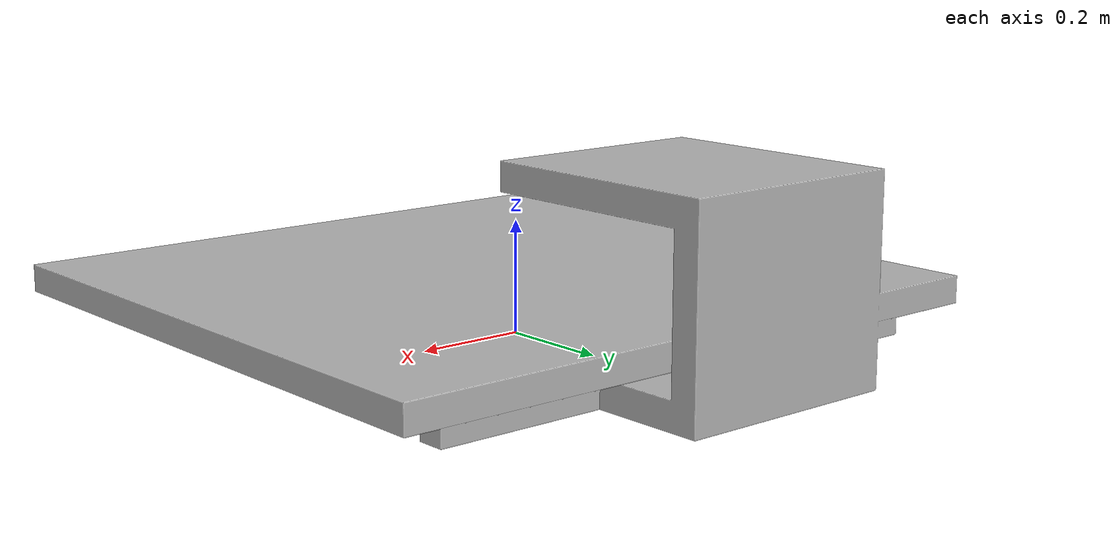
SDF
<?xml version='1.0'?>
<sdf version='1.4'>
  <model name='586'>
    <pose>0 0 0 0 0 0</pose>
    <static>true</static>
    <link name='link'>
      <collision name='collision'>
        <pose>0 0 0 0 0 0</pose>
        <geometry>
          <box>
            <size>1.2 1.27 2</size>
          </box>
        </geometry>
      </collision>
      <visual name='visual'>
        <pose>0 0 0 0 0 0</pose>
        <geometry>
          <mesh><uri>model://586/586.dae</uri></mesh>
        </geometry>
      </visual>
    </link>
  </model>
</sdf>
